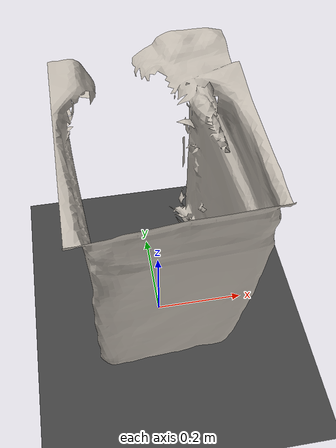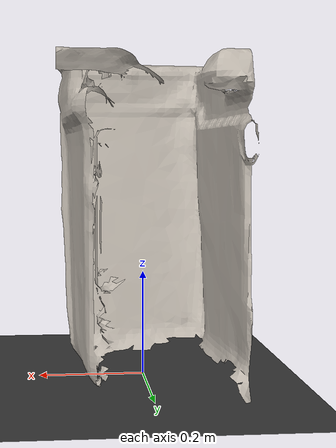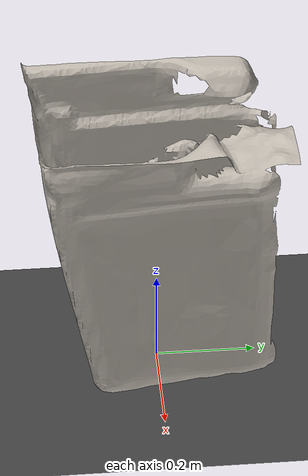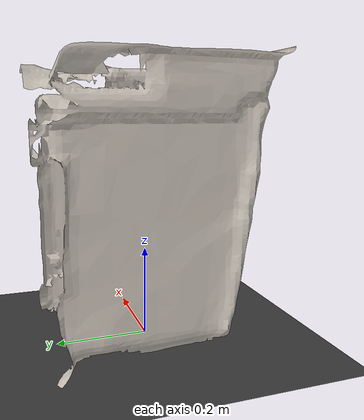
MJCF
<mujoco model="desk_drawer_scene">
  <compiler angle="radian" meshdir="desk_drawer" texturedir="desk_drawer"/>
  <option timestep="0.002" gravity="0 0 -9.81"/>

  <visual>
    <global offwidth="960" offheight="720"/>
  </visual>

  <asset>
    <texture type="skybox" builtin="gradient" rgb1="0.8 0.9 1" rgb2="0.3 0.4 0.5" width="256" height="256"/>
    <texture name="grid" type="2d" builtin="checker" rgb1="0.2 0.2 0.2" rgb2="0.3 0.3 0.3" width="300" height="300"/>
    <material name="grid" texture="grid" texrepeat="5 5" reflectance="0.1"/>

    <mesh name="desk_drawer" file="desk_drawer.obj"/>
    <texture name="desk_drawer_tex" type="2d" file="desk_drawer.png"/>
    <material name="desk_drawer_mat" texture="desk_drawer_tex" specular="0.1" shininess="0.05"/>
  </asset>

  <worldbody>
    <light pos="0 -1 3" dir="0 0.3 -1" diffuse="1 1 1"/>
    <geom name="floor" type="plane" size="3 3 0.1" material="grid"/>

    <body name="desk_drawer" pos="-0.459425 0.36779 -0.34453" quat="0.70710678 0.70710678 0 0">
      <geom name="desk_drawer_geom" type="mesh" mesh="desk_drawer" material="desk_drawer_mat"
            contype="0" conaffinity="0"/>
    </body>

    <camera name="view" pos="1.2 -1.25 0.77" xyaxes="0.707 0.707 0 -0.183 0.183 0.966"/>

    <body name="camera_mount" pos="1.2 -1.25 0.77" xyaxes="0.707 0.707 0 -0.183 0.183 0.966">
      <include file="rgbd_camera.xml"/>
    </body>
  </worldbody>
</mujoco>

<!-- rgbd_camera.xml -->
<mujocoinclude>
  <camera name="rgbd" fovy="58" resolution="640 480"/>
</mujocoinclude>
